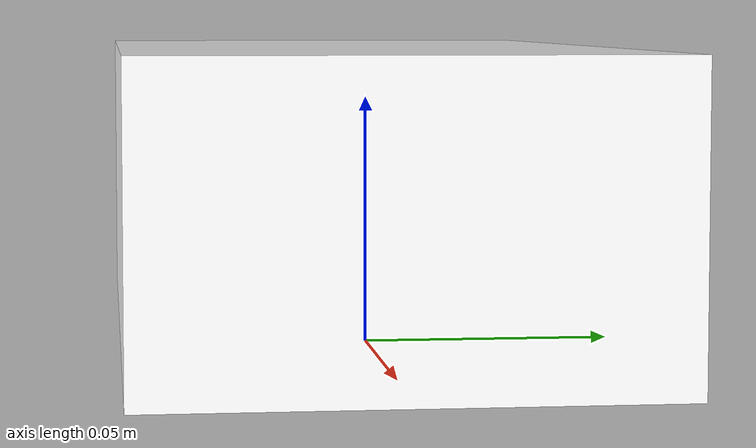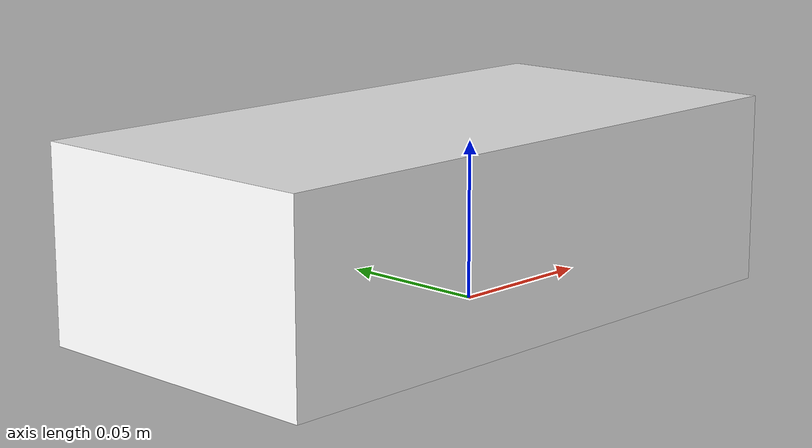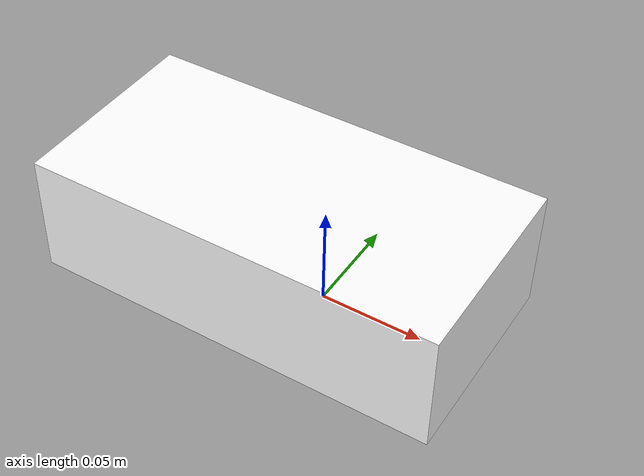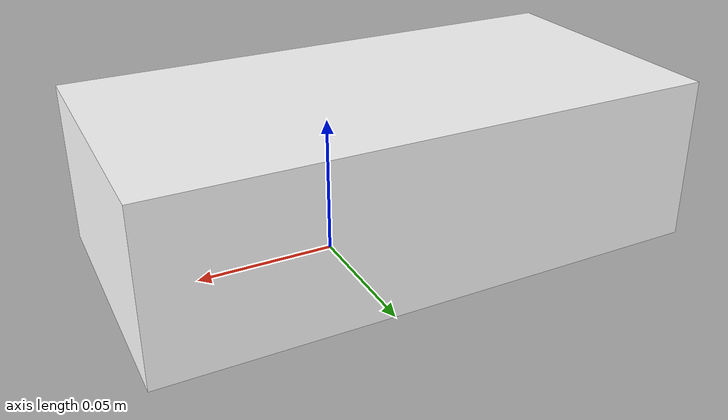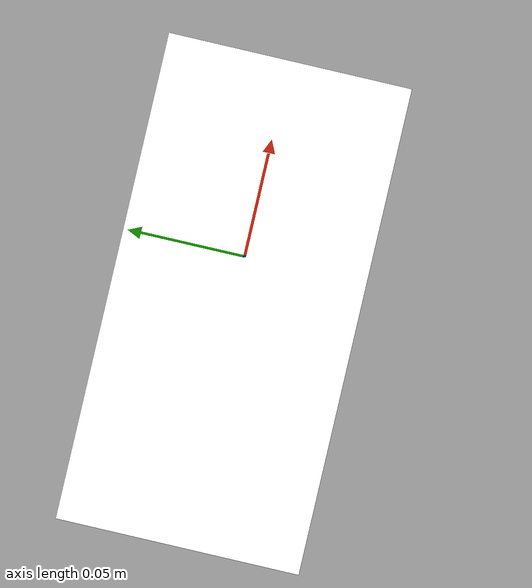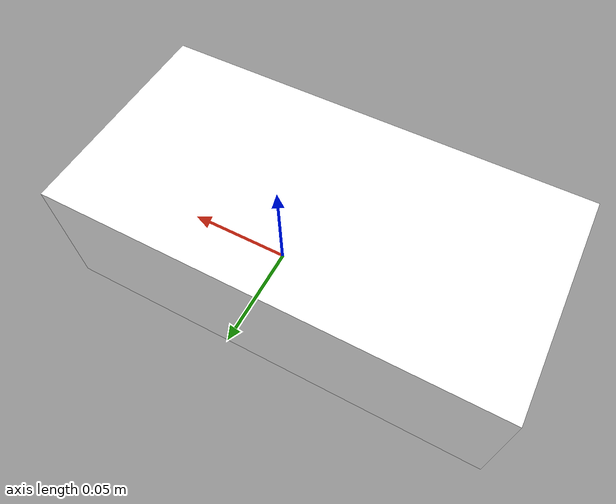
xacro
<?xml version="1.0"?>
<robot xmlns:xacro="http://www.ros.org/wiki/xacro" name="urdf_tutorial">

    <!-- COLOR -->
    <material name="white">
        <color rgba="1 1 1 1" />
    </material>

    <!-- BASE LINK -->
    <link name="base_link">
    </link>

    <!-- BODY LINK -->
    <joint name="body_joint" type="fixed">
        <parent link="base_link"/>
        <child link="body"/>
        <origin xyz="-0.12 0 0"/>
    </joint>

    <link name="body">
        <visual>
            <origin xyz="0.1 0 0.03"/>
            <geometry>
                <box size="0.2 0.1 0.06"/>
            </geometry>
            <material name="white"/>
        </visual>
    </link>

</robot>
